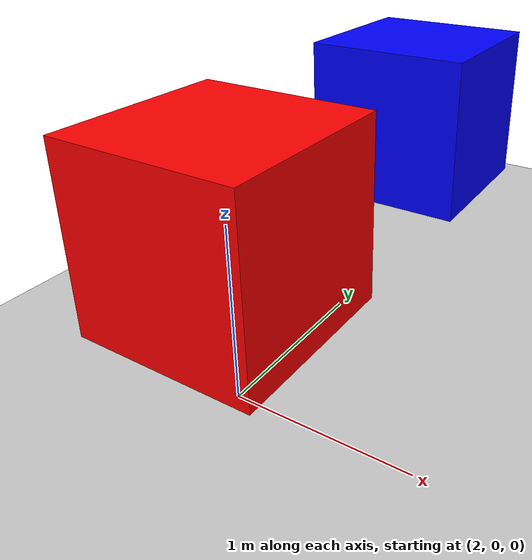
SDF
<?xml version="1.0" ?>
<sdf version="1.8">
<world name="camera_test">
    <physics name="1ms" type="ignored">
        <max_step_size>0.001</max_step_size>
        <real_time_factor>1.0</real_time_factor>
    </physics>
    <plugin
        filename="gz-sim-physics-system"
        name="gz::sim::systems::Physics">
    </plugin>
    <plugin
        filename="gz-sim-user-commands-system"
        name="gz::sim::systems::UserCommands">
    </plugin>
    <plugin
        filename="gz-sim-scene-broadcaster-system"
        name="gz::sim::systems::SceneBroadcaster">
    </plugin>
    <plugin
        filename="gz-sim-sensors-system"
        name="gz::sim::systems::Sensors">
        <render_engine>ogre</render_engine>
    </plugin>

    <!-- Ground plane -->
    <model name="ground_plane">
        <static>true</static>
        <link name="link">
            <collision name="collision">
                <geometry>
                    <plane>
                        <normal>0 0 1</normal>
                        <size>10 10</size>
                    </plane>
                </geometry>
            </collision>
            <visual name="visual">
                <geometry>
                    <plane>
                        <normal>0 0 1</normal>
                        <size>10 10</size>
                    </plane>
                </geometry>
                <material>
                    <ambient>0.8 0.8 0.8</ambient>
                    <diffuse>0.8 0.8 0.8</diffuse>
                </material>
            </visual>
        </link>
    </model>

    <!-- Test camera -->
    <model name="test_camera">
        <static>true</static>
        <pose>0 0 2 0 1.57 0</pose>
        <link name="camera_link">
            <sensor name="rgb_camera" type="camera">
                <camera>
                    <horizontal_fov>1.047</horizontal_fov>
                    <image>
                        <width>64</width>
                        <height>64</height>
                        <format>R8G8B8</format>
                    </image>
                    <clip>
                        <near>0.1</near>
                        <far>100</far>
                    </clip>
                </camera>
                <always_on>1</always_on>
                <update_rate>10</update_rate>
                <visualize>false</visualize>
            </sensor>
        </link>
    </model>

    <!-- Colored objects for camera to see -->
    <model name="red_box">
        <static>true</static>
        <pose>2 0 1 0 0 0</pose>
        <link name="link">
            <visual name="visual">
                <geometry><box><size>1 1 1</size></box></geometry>
                <material>
                    <ambient>1 0 0 1</ambient>
                    <diffuse>1 0 0 1</diffuse>
                </material>
            </visual>
        </link>
    </model>

    <model name="blue_box">
        <static>true</static>
        <pose>2 2 1 0 0 0</pose>
        <link name="link">
            <visual name="visual">
                <geometry><box><size>1 1 1</size></box></geometry>
                <material>
                    <ambient>0 0 1 1</ambient>
                    <diffuse>0 0 1 1</diffuse>
                </material>
            </visual>
        </link>
    </model>

</world>
</sdf>
